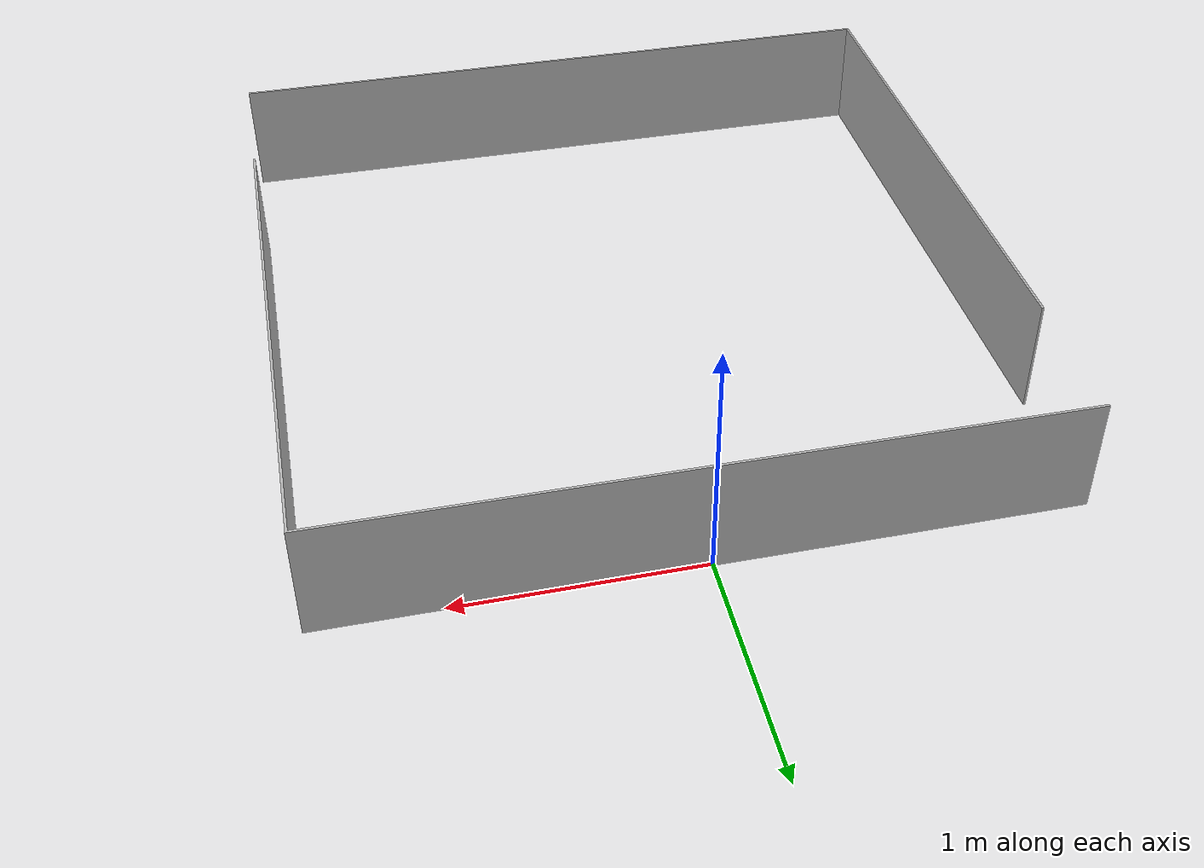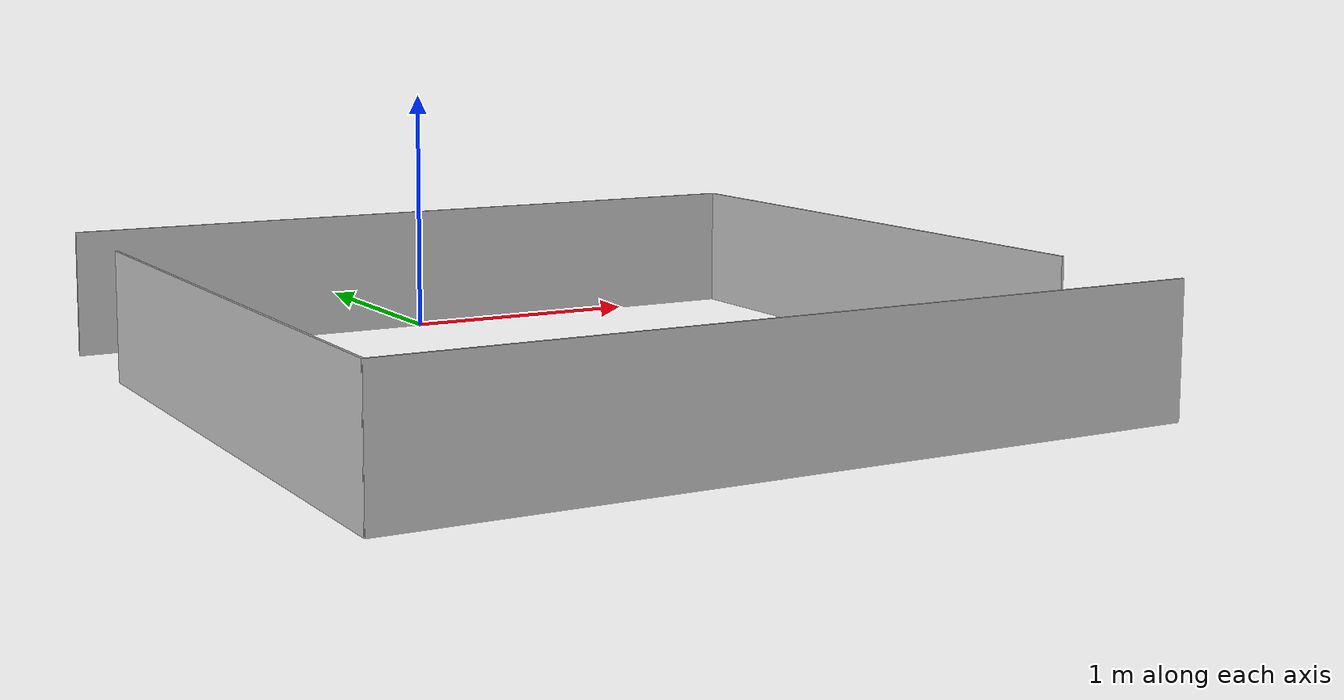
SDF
<?xml version="1.0" ?>
<sdf version="1.5">
  <model name="field">
    <static>true</static>
    <link name="link">
      <collision name="collision">
        <geometry>
          <mesh>
            <uri>model://field/meshes/field.dae</uri>
          </mesh>
        </geometry>
      </collision>
      <visual name="visual">
        <geometry>
          <mesh>
            <uri>model://field/meshes/field.dae</uri>
          </mesh>
        </geometry>
      </visual>
    </link>
  </model>
</sdf>
